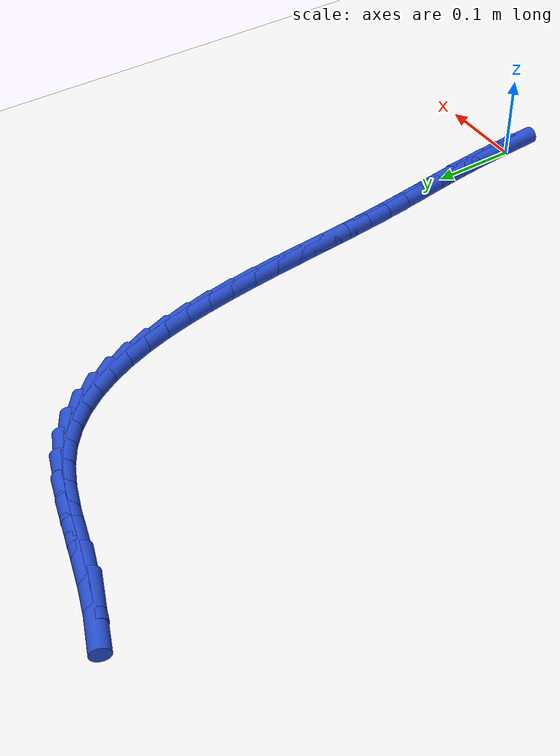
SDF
<sdf version="1.6">
 <world name="default">
  <model name="ground_plane">
   <static>1</static>
   <link name="link">
    <collision name="collision">
     <geometry><plane><normal>0 0 1</normal><size>100 100</size></plane></geometry>
     <surface><friction><ode><mu>100</mu><mu2>50</mu2></ode></friction></surface>
    </collision>
    <visual name="visual">
     <cast_shadows>0</cast_shadows>
     <geometry><plane><normal>0 0 1</normal><size>100 100</size></plane></geometry>
     <material>
      <script><uri>file://media/materials/scripts/gazebo.material</uri><name>Gazebo/WhiteGlow</name></script>
     </material>
    </visual>
   </link>
  </model>
  <model name="line">
   <link name="link_0">
    <pose>-8.673617379884035e-19 2.7755575615628914e-17 0.01 0 1.57 -1.5128704500691879</pose>
    <collision name="collision">
     <geometry><cylinder><radius>0.01</radius><length>0.08</length></cylinder></geometry>
    </collision>
    <visual name="visual">
     <material>
      <script><name>Gazebo/Blue</name><uri>file://media/materials/scripts/gazebo.material</uri></script>
     </material>
     <geometry><cylinder><radius>0.01</radius><length>0.08</length></cylinder></geometry>
    </visual>
   </link>
   <link name="link_1">
    <pose>-0.0015045076664612004 0.025943924021290907 0.01 0 1.57 -1.4839128301922735</pose>
    <collision name="collision">
     <geometry><cylinder><radius>0.01</radius><length>0.08</length></cylinder></geometry>
    </collision>
    <visual name="visual">
     <material>
      <script><name>Gazebo/Blue</name><uri>file://media/materials/scripts/gazebo.material</uri></script>
     </material>
     <geometry><cylinder><radius>0.01</radius><length>0.08</length></cylinder></geometry>
    </visual>
   </link>
   <link name="link_2">
    <pose>-0.00374537291131996 0.051670603096480805 0.01 0 1.57 -1.4614351807810255</pose>
    <collision name="collision">
     <geometry><cylinder><radius>0.01</radius><length>0.08</length></cylinder></geometry>
    </collision>
    <visual name="visual">
     <material>
      <script><name>Gazebo/Blue</name><uri>file://media/materials/scripts/gazebo.material</uri></script>
     </material>
     <geometry><cylinder><radius>0.01</radius><length>0.08</length></cylinder></geometry>
    </visual>
   </link>
   <link name="link_3">
    <pose>-0.00656273459518949 0.0773298163537965 0.01 0 1.57 -1.4458176689725841</pose>
    <collision name="collision">
     <geometry><cylinder><radius>0.01</radius><length>0.08</length></cylinder></geometry>
    </collision>
    <visual name="visual">
     <material>
      <script><name>Gazebo/Blue</name><uri>file://media/materials/scripts/gazebo.material</uri></script>
     </material>
     <geometry><cylinder><radius>0.01</radius><length>0.08</length></cylinder></geometry>
    </visual>
   </link>
   <link name="link_4">
    <pose>-0.009796731578683014 0.10307134292146485 0.01 0 1.57 -1.4372000547114856</pose>
    <collision name="collision">
     <geometry><cylinder><radius>0.01</radius><length>0.08</length></cylinder></geometry>
    </collision>
    <visual name="visual">
     <material>
      <script><name>Gazebo/Blue</name><uri>file://media/materials/scripts/gazebo.material</uri></script>
     </material>
     <geometry><cylinder><radius>0.01</radius><length>0.08</length></cylinder></geometry>
    </visual>
   </link>
   <link name="link_5">
    <pose>-0.01328750272241375 0.1290449619277127 0.01 0 1.57 -1.4355012979683903</pose>
    <collision name="collision">
     <geometry><cylinder><radius>0.01</radius><length>0.08</length></cylinder></geometry>
    </collision>
    <visual name="visual">
     <material>
      <script><name>Gazebo/Blue</name><uri>file://media/materials/scripts/gazebo.material</uri></script>
     </material>
     <geometry><cylinder><radius>0.01</radius><length>0.08</length></cylinder></geometry>
    </visual>
   </link>
   <link name="link_6">
    <pose>-0.016875186886994922 0.15540045250076692 0.01 0 1.57 -1.4404459054499166</pose>
    <collision name="collision">
     <geometry><cylinder><radius>0.01</radius><length>0.08</length></cylinder></geometry>
    </collision>
    <visual name="visual">
     <material>
      <script><name>Gazebo/Blue</name><uri>file://media/materials/scripts/gazebo.material</uri></script>
     </material>
     <geometry><cylinder><radius>0.01</radius><length>0.08</length></cylinder></geometry>
    </visual>
   </link>
   <link name="link_7">
    <pose>-0.020399922933039747 0.18228759376885423 0.01 0 1.57 -1.4515927462899783</pose>
    <collision name="collision">
     <geometry><cylinder><radius>0.01</radius><length>0.08</length></cylinder></geometry>
    </collision>
    <visual name="visual">
     <material>
      <script><name>Gazebo/Blue</name><uri>file://media/materials/scripts/gazebo.material</uri></script>
     </material>
     <geometry><cylinder><radius>0.01</radius><length>0.08</length></cylinder></geometry>
    </visual>
   </link>
   <link name="link_8">
    <pose>-0.023701849721161447 0.20985616486020162 0.01 0 1.57 -1.4680017954783229</pose>
    <collision name="collision">
     <geometry><cylinder><radius>0.01</radius><length>0.08</length></cylinder></geometry>
    </collision>
    <visual name="visual">
     <material>
      <script><name>Gazebo/Blue</name><uri>file://media/materials/scripts/gazebo.material</uri></script>
     </material>
     <geometry><cylinder><radius>0.01</radius><length>0.08</length></cylinder></geometry>
    </visual>
   </link>
   <link name="link_9">
    <pose>-0.026630461227368025 0.23824570004829687 0.01 0 1.57 -1.4826673577062643</pose>
    <collision name="collision">
     <geometry><cylinder><radius>0.01</radius><length>0.08</length></cylinder></geometry>
    </collision>
    <visual name="visual">
     <material>
      <script><name>Gazebo/Blue</name><uri>file://media/materials/scripts/gazebo.material</uri></script>
     </material>
     <geometry><cylinder><radius>0.01</radius><length>0.08</length></cylinder></geometry>
    </visual>
   </link>
   <link name="link_10">
    <pose>-0.0292071350444242 0.26740750261092483 0.01 0 1.57 -1.4903211158012812</pose>
    <collision name="collision">
     <geometry><cylinder><radius>0.01</radius><length>0.08</length></cylinder></geometry>
    </collision>
    <visual name="visual">
     <material>
      <script><name>Gazebo/Blue</name><uri>file://media/materials/scripts/gazebo.material</uri></script>
     </material>
     <geometry><cylinder><radius>0.01</radius><length>0.08</length></cylinder></geometry>
    </visual>
   </link>
   <link name="link_11">
    <pose>-0.03160405311483432 0.29712772888840494 0.01 0 1.57 -1.4913060136320955</pose>
    <collision name="collision">
     <geometry><cylinder><radius>0.01</radius><length>0.08</length></cylinder></geometry>
    </collision>
    <visual name="visual">
     <material>
      <script><name>Gazebo/Blue</name><uri>file://media/materials/scripts/gazebo.material</uri></script>
     </material>
     <geometry><cylinder><radius>0.01</radius><length>0.08</length></cylinder></geometry>
    </visual>
   </link>
   <link name="link_12">
    <pose>-0.033998514007887996 0.3271869319659438 0.01 0 1.57 -1.4858649426653563</pose>
    <collision name="collision">
     <geometry><cylinder><radius>0.01</radius><length>0.08</length></cylinder></geometry>
    </collision>
    <visual name="visual">
     <material>
      <script><name>Gazebo/Blue</name><uri>file://media/materials/scripts/gazebo.material</uri></script>
     </material>
     <geometry><cylinder><radius>0.01</radius><length>0.08</length></cylinder></geometry>
    </visual>
   </link>
   <link name="link_13">
    <pose>-0.036567816292874825 0.35736566492874766 0.01 0 1.57 -1.4739737849723542</pose>
    <collision name="collision">
     <geometry><cylinder><radius>0.01</radius><length>0.08</length></cylinder></geometry>
    </collision>
    <visual name="visual">
     <material>
      <script><name>Gazebo/Blue</name><uri>file://media/materials/scripts/gazebo.material</uri></script>
     </material>
     <geometry><cylinder><radius>0.01</radius><length>0.08</length></cylinder></geometry>
    </visual>
   </link>
   <link name="link_14">
    <pose>-0.03948925853908443 0.3874444808620231 0.01 0 1.57 -1.4553527718935229</pose>
    <collision name="collision">
     <geometry><cylinder><radius>0.01</radius><length>0.08</length></cylinder></geometry>
    </collision>
    <visual name="visual">
     <material>
      <script><name>Gazebo/Blue</name><uri>file://media/materials/scripts/gazebo.material</uri></script>
     </material>
     <geometry><cylinder><radius>0.01</radius><length>0.08</length></cylinder></geometry>
    </visual>
   </link>
   <link name="link_15">
    <pose>-0.042940139315806404 0.4172039328509768 0.01 0 1.57 -1.4294613938874563</pose>
    <collision name="collision">
     <geometry><cylinder><radius>0.01</radius><length>0.08</length></cylinder></geometry>
    </collision>
    <visual name="visual">
     <material>
      <script><name>Gazebo/Blue</name><uri>file://media/materials/scripts/gazebo.material</uri></script>
     </material>
     <geometry><cylinder><radius>0.01</radius><length>0.08</length></cylinder></geometry>
    </visual>
   </link>
   <link name="link_16">
    <pose>-0.04709775719233038 0.44642457398081503 0.01 0 1.57 -1.3954809023266712</pose>
    <collision name="collision">
     <geometry><cylinder><radius>0.01</radius><length>0.08</length></cylinder></geometry>
    </collision>
    <visual name="visual">
     <material>
      <script><name>Gazebo/Blue</name><uri>file://media/materials/scripts/gazebo.material</uri></script>
     </material>
     <geometry><cylinder><radius>0.01</radius><length>0.08</length></cylinder></geometry>
    </visual>
   </link>
   <link name="link_17">
    <pose>-0.05213941073794594 0.4748869573367444 0.01 0 1.57 -1.3522909883934888</pose>
    <collision name="collision">
     <geometry><cylinder><radius>0.01</radius><length>0.08</length></cylinder></geometry>
    </collision>
    <visual name="visual">
     <material>
      <script><name>Gazebo/Blue</name><uri>file://media/materials/scripts/gazebo.material</uri></script>
     </material>
     <geometry><cylinder><radius>0.01</radius><length>0.08</length></cylinder></geometry>
    </visual>
   </link>
   <link name="link_18">
    <pose>-0.05824239852194268 0.5023716360039712 0.01 0 1.57 -1.2984539915197313</pose>
    <collision name="collision">
     <geometry><cylinder><radius>0.01</radius><length>0.08</length></cylinder></geometry>
    </collision>
    <visual name="visual">
     <material>
      <script><name>Gazebo/Blue</name><uri>file://media/materials/scripts/gazebo.material</uri></script>
     </material>
     <geometry><cylinder><radius>0.01</radius><length>0.08</length></cylinder></geometry>
    </visual>
   </link>
   <link name="link_19">
    <pose>-0.06558401911361023 0.528659163067702 0.01 0 1.57 -1.2322340940447465</pose>
    <collision name="collision">
     <geometry><cylinder><radius>0.01</radius><length>0.08</length></cylinder></geometry>
    </collision>
    <visual name="visual">
     <material>
      <script><name>Gazebo/Blue</name><uri>file://media/materials/scripts/gazebo.material</uri></script>
     </material>
     <geometry><cylinder><radius>0.01</radius><length>0.08</length></cylinder></geometry>
    </visual>
   </link>
   <link name="link_20">
    <pose>-0.07434157108223821 0.5535300916131435 0.01 0 1.57 -1.1517037740447187</pose>
    <collision name="collision">
     <geometry><cylinder><radius>0.01</radius><length>0.08</length></cylinder></geometry>
    </collision>
    <visual name="visual">
     <material>
      <script><name>Gazebo/Blue</name><uri>file://media/materials/scripts/gazebo.material</uri></script>
     </material>
     <geometry><cylinder><radius>0.01</radius><length>0.08</length></cylinder></geometry>
    </visual>
   </link>
   <link name="link_21">
    <pose>-0.08469235299711621 0.5767649747255019 0.01 0 1.57 -1.0550235052395125</pose>
    <collision name="collision">
     <geometry><cylinder><radius>0.01</radius><length>0.08</length></cylinder></geometry>
    </collision>
    <visual name="visual">
     <material>
      <script><name>Gazebo/Blue</name><uri>file://media/materials/scripts/gazebo.material</uri></script>
     </material>
     <geometry><cylinder><radius>0.01</radius><length>0.08</length></cylinder></geometry>
    </visual>
   </link>
   <link name="link_22">
    <pose>-0.09681366342753381 0.5981443654899837 0.01 0 1.57 -0.9410000450630925</pose>
    <collision name="collision">
     <geometry><cylinder><radius>0.01</radius><length>0.08</length></cylinder></geometry>
    </collision>
    <visual name="visual">
     <material>
      <script><name>Gazebo/Blue</name><uri>file://media/materials/scripts/gazebo.material</uri></script>
     </material>
     <geometry><cylinder><radius>0.01</radius><length>0.08</length></cylinder></geometry>
    </visual>
   </link>
   <link name="link_23">
    <pose>-0.11088280094278062 0.6174488169917955 0.01 0 1.57 -0.8099623723508368</pose>
    <collision name="collision">
     <geometry><cylinder><radius>0.01</radius><length>0.08</length></cylinder></geometry>
    </collision>
    <visual name="visual">
     <material>
      <script><name>Gazebo/Blue</name><uri>file://media/materials/scripts/gazebo.material</uri></script>
     </material>
     <geometry><cylinder><radius>0.01</radius><length>0.08</length></cylinder></geometry>
    </visual>
   </link>
   <link name="link_24">
    <pose>-0.12707706411214637 0.6344588823161439 0.01 0 1.57 -0.6647352632352869</pose>
    <collision name="collision">
     <geometry><cylinder><radius>0.01</radius><length>0.08</length></cylinder></geometry>
    </collision>
    <visual name="visual">
     <material>
      <script><name>Gazebo/Blue</name><uri>file://media/materials/scripts/gazebo.material</uri></script>
     </material>
     <geometry><cylinder><radius>0.01</radius><length>0.08</length></cylinder></geometry>
    </visual>
   </link>
   <link name="link_25">
    <pose>-0.14557375150492047 0.6489551145482352 0.01 0 1.57 -0.5120050205259337</pose>
    <collision name="collision">
     <geometry><cylinder><radius>0.01</radius><length>0.08</length></cylinder></geometry>
    </collision>
    <visual name="visual">
     <material>
      <script><name>Gazebo/Blue</name><uri>file://media/materials/scripts/gazebo.material</uri></script>
     </material>
     <geometry><cylinder><radius>0.01</radius><length>0.08</length></cylinder></geometry>
    </visual>
   </link>
   <link name="link_26">
    <pose>-0.16653618931143183 0.6607358794592619 0.01 0 1.57 -0.38060713266687035</pose>
    <collision name="collision">
     <geometry><cylinder><radius>0.01</radius><length>0.08</length></cylinder></geometry>
    </collision>
    <visual name="visual">
     <material>
      <script><name>Gazebo/Blue</name><uri>file://media/materials/scripts/gazebo.material</uri></script>
     </material>
     <geometry><cylinder><radius>0.01</radius><length>0.08</length></cylinder></geometry>
    </visual>
   </link>
   <link name="link_27">
    <pose>-0.18978399552947572 0.6700377191769027 0.01 0 1.57 -0.29201493422989855</pose>
    <collision name="collision">
     <geometry><cylinder><radius>0.01</radius><length>0.08</length></cylinder></geometry>
    </collision>
    <visual name="visual">
     <material>
      <script><name>Gazebo/Blue</name><uri>file://media/materials/scripts/gazebo.material</uri></script>
     </material>
     <geometry><cylinder><radius>0.01</radius><length>0.08</length></cylinder></geometry>
    </visual>
   </link>
   <link name="link_28">
    <pose>-0.21478018866431217 0.6775517866578992 0.01 0 1.57 -0.24105027184352956</pose>
    <collision name="collision">
     <geometry><cylinder><radius>0.01</radius><length>0.08</length></cylinder></geometry>
    </collision>
    <visual name="visual">
     <material>
      <script><name>Gazebo/Blue</name><uri>file://media/materials/scripts/gazebo.material</uri></script>
     </material>
     <geometry><cylinder><radius>0.01</radius><length>0.08</length></cylinder></geometry>
    </visual>
   </link>
   <link name="link_29">
    <pose>-0.2409712354864395 0.6839903358364767 0.01 0 1.57 -0.22266206944576403</pose>
    <collision name="collision">
     <geometry><cylinder><radius>0.01</radius><length>0.08</length></cylinder></geometry>
    </collision>
    <visual name="visual">
     <material>
      <script><name>Gazebo/Blue</name><uri>file://media/materials/scripts/gazebo.material</uri></script>
     </material>
     <geometry><cylinder><radius>0.01</radius><length>0.08</length></cylinder></geometry>
    </visual>
   </link>
   <link name="link_30">
    <pose>-0.26780360276635584 0.6900656206468609 0.01 0 1.57 -0.23426036577206738</pose>
    <collision name="collision">
     <geometry><cylinder><radius>0.01</radius><length>0.08</length></cylinder></geometry>
    </collision>
    <visual name="visual">
     <material>
      <script><name>Gazebo/Blue</name><uri>file://media/materials/scripts/gazebo.material</uri></script>
     </material>
     <geometry><cylinder><radius>0.01</radius><length>0.08</length></cylinder></geometry>
    </visual>
   </link>
   <link name="link_31">
    <pose>-0.2947237572745594 0.6964898950232765 0.01 0 1.57 -0.27562030793661396</pose>
    <collision name="collision">
     <geometry><cylinder><radius>0.01</radius><length>0.08</length></cylinder></geometry>
    </collision>
    <visual name="visual">
     <material>
      <script><name>Gazebo/Blue</name><uri>file://media/materials/scripts/gazebo.material</uri></script>
     </material>
     <geometry><cylinder><radius>0.01</radius><length>0.08</length></cylinder></geometry>
    </visual>
   </link>
   <link name="link_32">
    <pose>-0.3211803999460942 0.7039723209563044 0.01 0 1.57 -0.33871883276390063</pose>
    <collision name="collision">
     <geometry><cylinder><radius>0.01</radius><length>0.08</length></cylinder></geometry>
    </collision>
    <visual name="visual">
     <material>
      <script><name>Gazebo/Blue</name><uri>file://media/materials/scripts/gazebo.material</uri></script>
     </material>
     <geometry><cylinder><radius>0.01</radius><length>0.08</length></cylinder></geometry>
    </visual>
   </link>
   <link name="link_281">
    <pose>-0.0015274576302543785 0.025900488619198657 0.01 0 1.57 -1.4766121427946401</pose>
    <collision name="collision">
     <geometry><cylinder><radius>0.01</radius><length>0.08</length></cylinder></geometry>
    </collision>
    <visual name="visual">
     <material>
      <script><name>Gazebo/Blue</name><uri>file://media/materials/scripts/gazebo.material</uri></script>
     </material>
     <geometry><cylinder><radius>0.01</radius><length>0.08</length></cylinder></geometry>
    </visual>
   </link>
   <link name="link_282">
    <pose>-0.0039289726216654355 0.05132311987974436 0.01 0 1.57 -1.494391690690636</pose>
    <collision name="collision">
     <geometry><cylinder><radius>0.01</radius><length>0.08</length></cylinder></geometry>
    </collision>
    <visual name="visual">
     <material>
      <script><name>Gazebo/Blue</name><uri>file://media/materials/scripts/gazebo.material</uri></script>
     </material>
     <geometry><cylinder><radius>0.01</radius><length>0.08</length></cylinder></geometry>
    </visual>
   </link>
  </model>
 </world>
</sdf>
